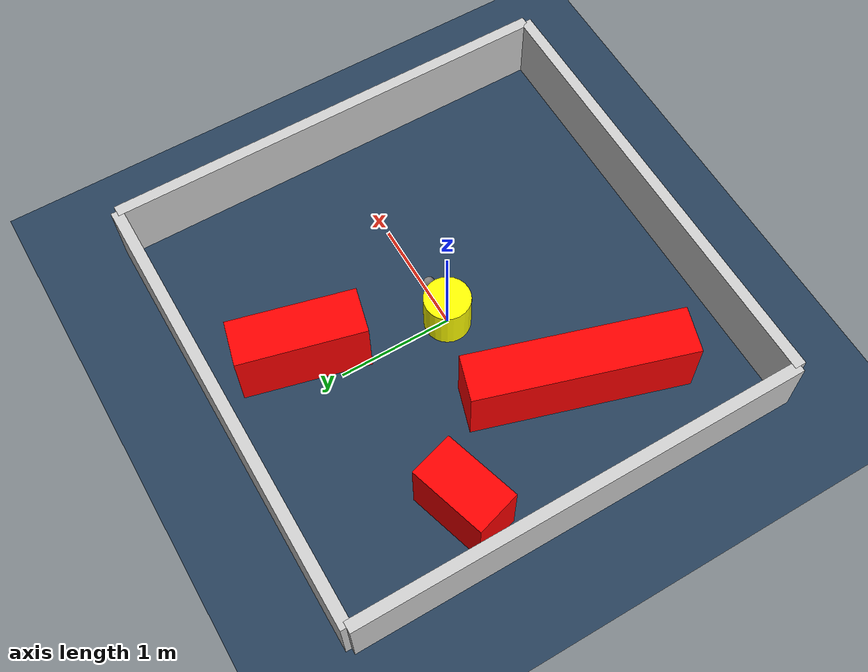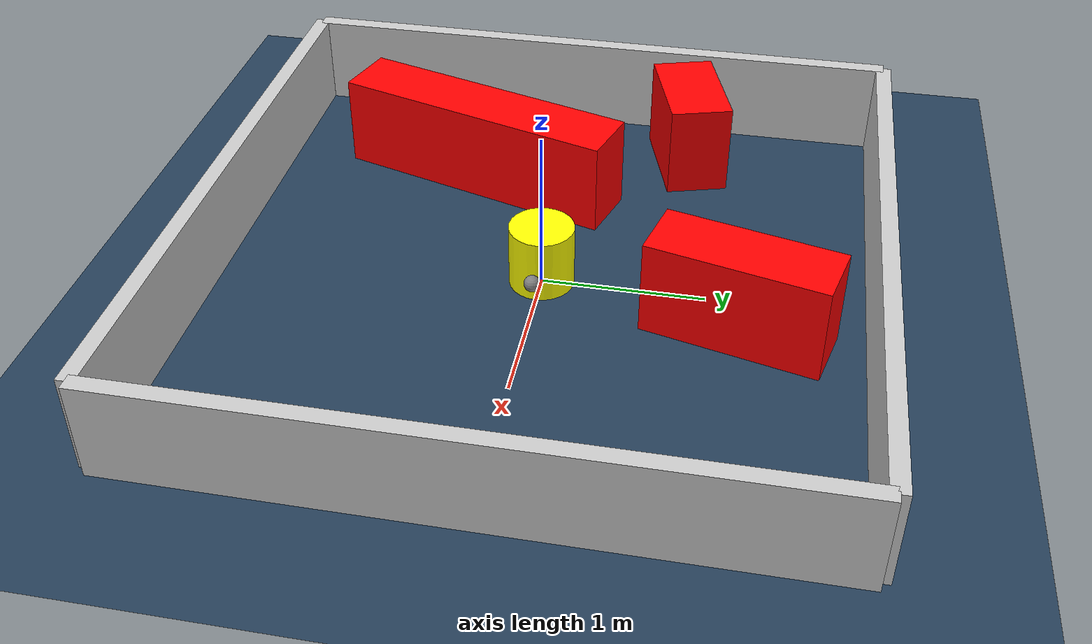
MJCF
<?xml version="1.0" ?>
<mujoco model="generated_environment">
  <option timestep="0.01" integrator="RK4" cone="elliptic"/>
  <default>
    <geom density="1"/>
  </default>
  <asset>
    <texture builtin="gradient" height="3072" rgb1="0.3 0.5 0.7" rgb2="0 0 0" type="skybox" width="512"/>
    <texture builtin="checker" height="300" mark="edge" markrgb="0.8 0.8 0.8" name="groundplane" rgb1="0.2 0.3 0.4" rgb2="0.1 0.2 0.3" type="2d" width="300"/>
    <material name="groundplane" reflectance="0.2" texrepeat="5 5" texture="groundplane" texuniform="true"/>
    <material name="robot" rgba="0.0 1.0 0.0 1"/>
  </asset>
  <worldbody>
    <light dir="0 0 -1" directional="true" pos="0 0 1.5"/>
    <geom condim="4" friction="1.0 0.005 0.001" material="groundplane" name="floor" size="0 0 0.05" type="plane"/>
    <body name="walls">
      <geom name="wall_1" condim="4" pos="-2.0 0.0 0.3" rgba="0.800000011920929 0.800000011920929 0.800000011920929 1.0" size="0.05 2.0 0.3" type="box"/>
      <geom name="wall_2" condim="4" pos="2.0 0.0 0.3" rgba="0.800000011920929 0.800000011920929 0.800000011920929 1.0" size="0.05 2.0 0.3" type="box"/>
      <geom name="wall_3" condim="4" pos="0.0 -2.0 0.3" rgba="0.800000011920929 0.800000011920929 0.800000011920929 1.0" size="2.0 0.05 0.3" type="box"/>
      <geom name="wall_4" condim="4" pos="0.0 2.0 0.3" rgba="0.800000011920929 0.800000011920929 0.800000011920929 1.0" size="2.0 0.05 0.3" type="box"/>
    </body>
    <body name="robot">
      <joint name="joint_x" type="slide" pos="0 0 0" axis="1 0 0"/>
      <joint name="joint_y" type="slide" pos="0 0 0" axis="0 1 0"/>
      <geom name="robot" type="sphere" pos="0.3 0.0 0.2" size="0.05" mass="5." friction="1.0 0.005 0.0001" condim="4" rgba="0.5 0.5 0.5 1.0"/>
      <site name="sensor_ball"/>
    </body>
    <body name="obstacle_movable_1">
      <geom name="obstacle_movable_1" condim="4" pos="0.0 0.0 0.2" euler="0 0 0.0" friction="1.0 0.005 0.001" rgba="1.0 1.0 0.0 1.0" size="0.2 0.2 0.0" type="cylinder" mass="0.1"/>
      <joint type="free"/>
    </body>
    <body name="obstacle_2_static">
      <geom name="obstacle_2_static" condim="4" pos="0.2912013192075704 1.2121286304278647 0.3" euler="0 0 75.8889054599052" friction="1.0 0.005 0.001" rgba="1 0 0 1" size="0.5406762626060281 0.2 0.3" type="box"/>
    </body>
    <body name="obstacle_3_static">
      <geom name="obstacle_3_static" condim="4" pos="-1.0471030144098612 -0.5922593983830695 0.3" euler="0 0 72.82483244585559" friction="1.0 0.005 0.001" rgba="1 0 0 1" size="0.9320464304314879 0.2 0.3" type="box"/>
    </body>
    <body name="obstacle_4_static">
      <geom name="obstacle_4_static" condim="4" pos="-1.5022622106355716 0.7398545168176411 0.3" euler="0 0 16.736325490881974" friction="1.0 0.005 0.001" rgba="1 0 0 1" size="0.34531056340541344 0.2 0.3" type="box"/>
    </body>
  </worldbody>
  <actuator>
    <motor name="actuator_x" joint="joint_x" gear="1" ctrlrange="-1 1"/>
    <motor name="actuator_y" joint="joint_y" gear="1" ctrlrange="-1 1"/>
  </actuator>
</mujoco>
